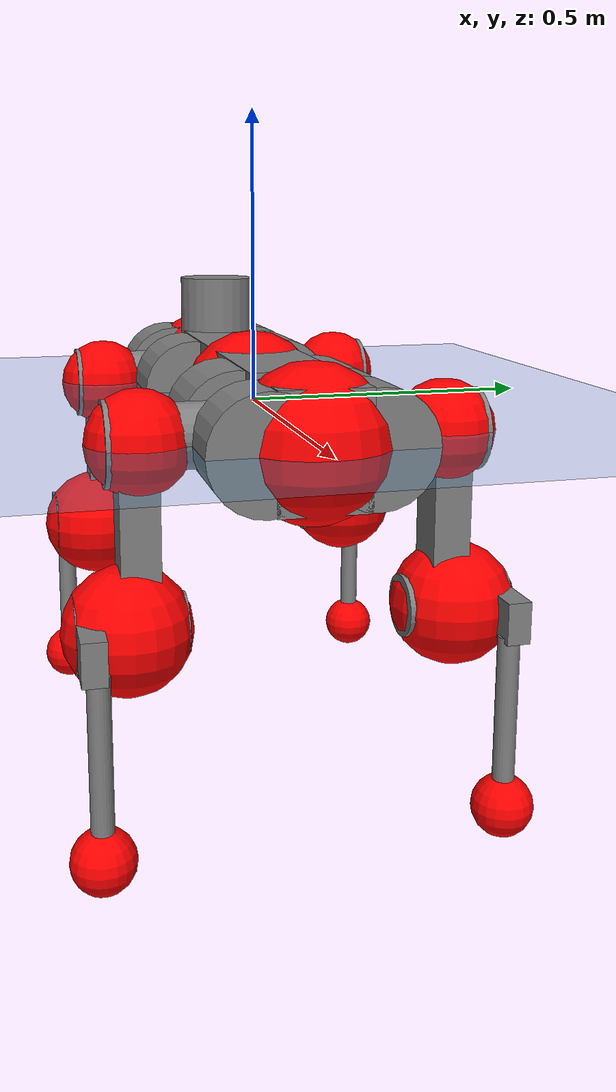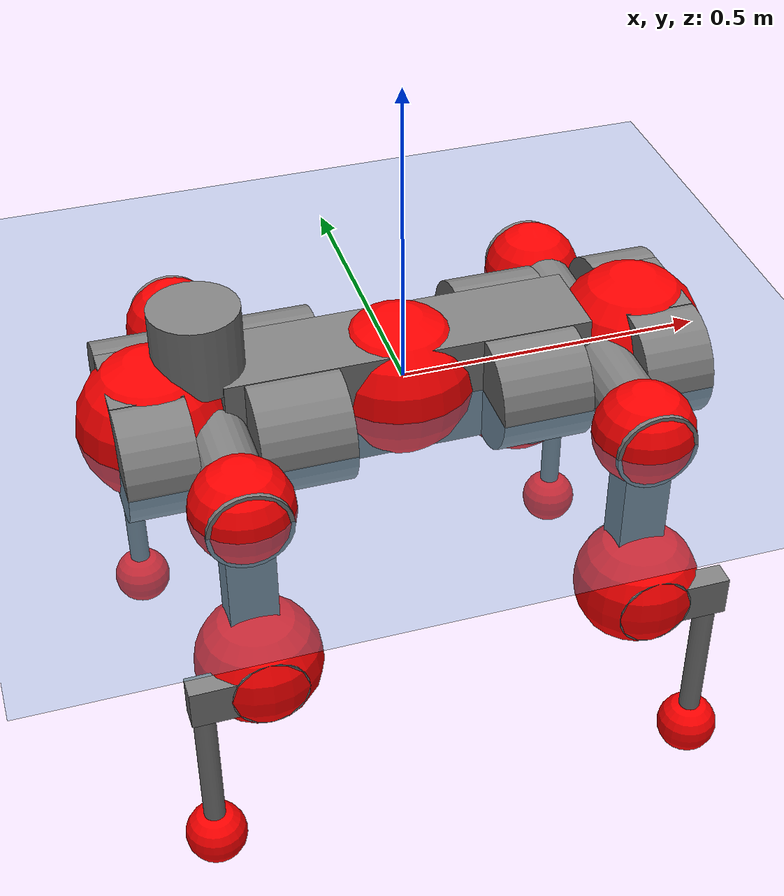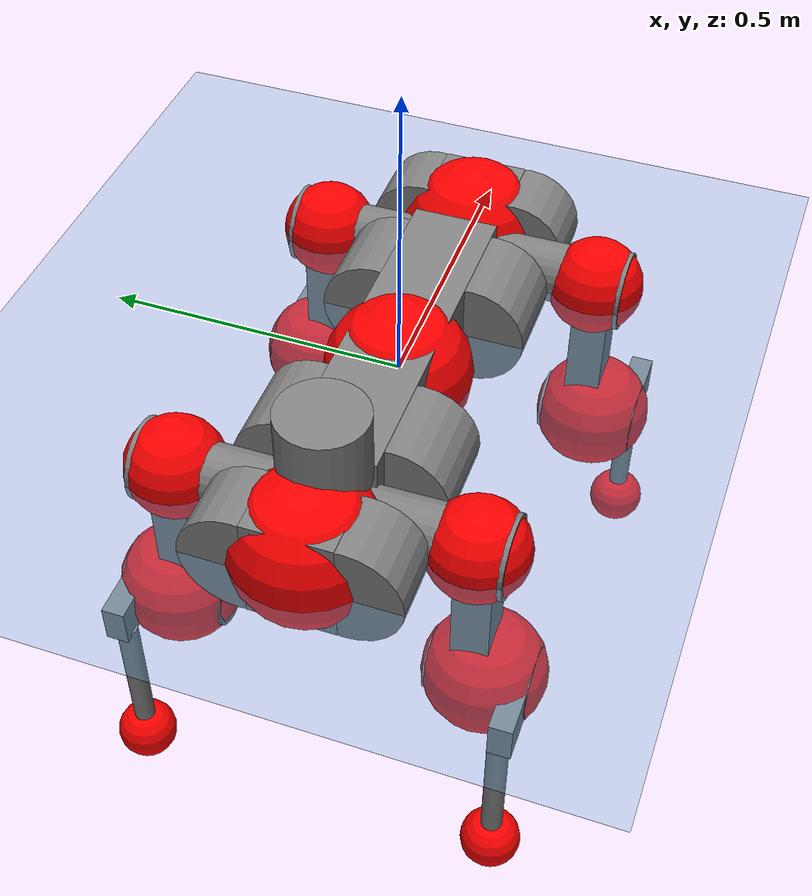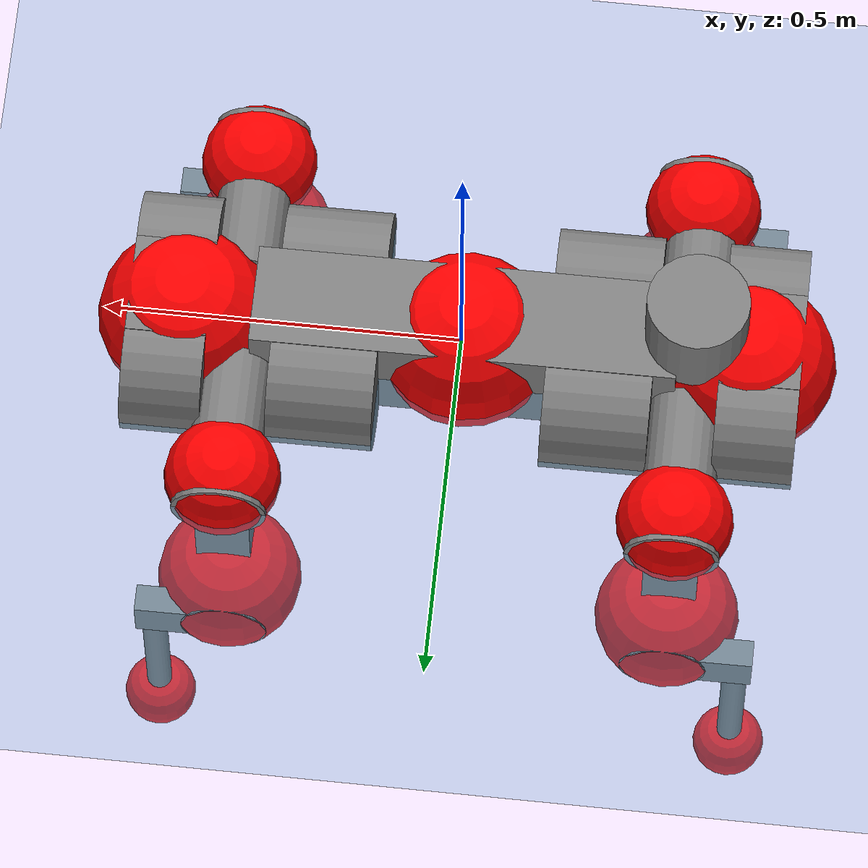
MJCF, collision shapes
<mujoco model="anymal_c">
  <compiler angle="radian" assetdir="assets" balanceinertia="true" inertiafromgeom="false"/>

  <option timestep="0.005" density="1.2" viscosity="2e-05"/>

  <size nkey="1"/>

  <visual>
    <quality shadowsize="8192"/>
    <map shadowclip="0.5"/>
  </visual>

  <default>
    <default class="/">
      <material specular="0" shininess="0.25"/>
      <geom contype="0" conaffinity="0" group="1" solref="-1000 -80"/>
      <site size="0.01 0.005 0.005" group="5"/>
      <general forcelimited="true" forcerange="-80 80" biastype="affine" gainprm="80" biasprm="0 -80 -2"/>
      <default class="anymal_c">
        <joint armature="0.01" damping="0.01" frictionloss="0.1"/>
        <default class="visual">
          <geom type="mesh" group="2"/>
          <default class="visual_zflip"/>
        </default>
        <default class="collision">
          <geom type="cylinder" group="3"/>
          <default class="foot">
            <geom size="0.03 0 0" type="sphere" condim="6" priority="1" friction="0.8 0.02 0.01" solimp="0.015 1 0.03"/>
          </default>
        </default>
      </default>
      <default class="reward_collision_sphere">
        <geom group="5" rgba="1 0 0 1"/>
      </default>
    </default>
  </default>

  <asset>
    <texture type="skybox" colorspace="auto" name="//unnamed_texture_0" builtin="gradient" rgb1="0.95 0.95 0.95" rgb2="0.95 0.95 0.95" width="100" height="600"/>
    <texture type="2d" colorspace="auto" name="texplane" builtin="checker" rgb1="0.345 0.575 0.748" rgb2="0.345 0.575 0.748" markrgb="1 1 1" width="512" height="512"/>
    <texture type="2d" colorspace="linear" name="base" file="base.png"/>
    <texture type="2d" colorspace="linear" name="top_shell" file="top_shell.png"/>
    <texture type="2d" colorspace="linear" name="bottom_shell" file="bottom_shell.png"/>
    <texture type="2d" colorspace="linear" name="remote" file="remote.png"/>
    <texture type="2d" colorspace="linear" name="hatch" file="hatch.png"/>
    <texture type="2d" colorspace="linear" name="handle" file="handle.png"/>
    <texture type="2d" colorspace="linear" name="face" file="face.png"/>
    <texture type="2d" colorspace="linear" name="battery" file="battery.png"/>
    <texture type="2d" colorspace="linear" name="lidar_cage" file="lidar_cage.png"/>
    <texture type="2d" colorspace="linear" name="depth_camera" file="depth_camera.png"/>
    <texture type="2d" colorspace="linear" name="wide_angle_camera" file="wide_angle_camera.png"/>
    <texture type="2d" colorspace="linear" name="lidar" file="lidar.png"/>
    <texture type="2d" colorspace="linear" name="drive" file="drive.png"/>
    <texture type="2d" colorspace="linear" name="hip_l" file="hip_l.png"/>
    <texture type="2d" colorspace="linear" name="shank_l" file="shank_l.png"/>
    <texture type="2d" colorspace="linear" name="foot" file="foot.png"/>
    <texture type="2d" colorspace="linear" name="thigh" file="thigh.png"/>
    <texture type="2d" colorspace="linear" name="shank_r" file="shank_r.png"/>
    <texture type="2d" colorspace="linear" name="hip_r" file="hip_r.png"/>
    <material name="MatPlane" class="/" texture="texplane" texuniform="true" texrepeat="2 2" specular="0.9" shininess="0.5"/>
    <material name="black_plastic" class="/" rgba="0.007 0.007 0.007 1"/>
    <material name="green" class="/" rgba="0.052 0.178 0.033 1"/>
    <material name="red" class="/" rgba="0.178 0.006 0.005 1"/>
    <material name="yellow" class="/" rgba="0.178 0.119 0.006 1"/>
    <material name="lwl" class="/" rgba="0.8 0.8 0.8 1"/>
    <material name="base" class="/" texture="base"/>
    <material name="top_shell" class="/" texture="top_shell"/>
    <material name="bottom_shell" class="/" texture="bottom_shell"/>
    <material name="hip_l" class="/" texture="hip_l"/>
    <material name="thigh" class="/" texture="thigh"/>
    <material name="shank_l" class="/" texture="shank_l"/>
    <material name="foot" class="/" texture="foot"/>
    <material name="hip_r" class="/" texture="hip_r"/>
    <material name="shank" class="/" texture="shank_r"/>
    <material name="hatch" class="/" texture="hatch"/>
    <material name="remote" class="/" texture="remote"/>
    <material name="handle" class="/" texture="handle"/>
    <material name="face" class="/" texture="face"/>
    <material name="depth_camera" class="/" texture="depth_camera"/>
    <material name="wide_angle_camera" class="/" texture="wide_angle_camera"/>
    <material name="battery" class="/" texture="battery"/>
    <material name="lidar_cage" class="/" texture="lidar_cage"/>
    <material name="lidar" class="/" texture="lidar"/>
    <material name="drive" class="/" texture="drive"/>
    <mesh name="base_0" class="/" file="base_0.obj"/>
    <mesh name="base_1" class="/" file="base_1.obj"/>
    <mesh name="base_2" class="/" file="base_2.obj"/>
    <mesh name="base_3" class="/" file="base_3.obj"/>
    <mesh name="base_4" class="/" file="base_4.obj"/>
    <mesh name="base_5" class="/" file="base_5.obj"/>
    <mesh name="top_shell" class="/" file="top_shell.obj"/>
    <mesh name="bottom_shell" class="/" file="bottom_shell.obj"/>
    <mesh name="remote" class="/" file="remote.obj"/>
    <mesh name="handle" class="/" file="handle.obj"/>
    <mesh name="face" class="/" file="face.obj"/>
    <mesh name="wide_angle_camera" class="/" file="wide_angle_camera.obj"/>
    <mesh name="depth_camera" class="/" file="depth_camera.obj"/>
    <mesh name="battery" class="/" file="battery.obj"/>
    <mesh name="lidar_cage" class="/" file="lidar_cage.obj"/>
    <mesh name="lidar" class="/" file="lidar.obj"/>
    <mesh name="drive" class="/" file="drive.obj"/>
    <mesh name="hip_l" class="/" file="hip_l.obj"/>
    <mesh name="thigh" class="/" file="thigh.obj"/>
    <mesh name="shank_l" class="/" file="shank_l.obj"/>
    <mesh name="foot" class="/" file="foot.obj"/>
    <mesh name="hip_r" class="/" file="hip_r.obj"/>
    <mesh name="hatch" class="/" file="hatch.obj"/>
    <mesh name="shank_r" class="/" file="shank_r.obj"/>
  </asset>

  <worldbody>
    <geom name="floor" class="/" size="100 100 0.125" type="plane" group="0" material="MatPlane"/>
    <light name="toplight_shadow" class="/" pos="0 0 5" dir="0.0990148 0.0990148 -0.990148" type="directional" ambient="0.04 0.04 0.04" diffuse="0.55 0.55 0.55" specular="0.12 0.12 0.12"/>
    <light name="toplight_fill" class="/" pos="0 0 5" dir="0.0990148 0.0990148 -0.990148" type="directional" castshadow="false" ambient="0.04 0.04 0.04" diffuse="0.3 0.3 0.3" specular="0.08 0.08 0.08"/>
    <body name="trunk" childclass="anymal_c" pos="-0.00701481 -0.00183331 9.15749e-05" quat="0.999996 -0.00226188 0.00102321 0.00132999">
      <inertial pos="0.00849205 -2.49953e-05 0.04702" quat="0.490978 0.506432 0.503575 0.498878" mass="22.2549" diaginertia="0.327681 1.39035 0.230507"/>
      <joint name="//unnamed_joint_0" type="free" armature="0" damping="0" frictionloss="0"/>
      <geom name="//unnamed_geom_1" class="visual" material="green" mesh="base_0"/>
      <geom name="//unnamed_geom_2" class="visual" material="yellow" mesh="base_1"/>
      <geom name="//unnamed_geom_3" class="visual" material="red" mesh="base_2"/>
      <geom name="//unnamed_geom_4" class="visual" material="black_plastic" mesh="base_3"/>
      <geom name="//unnamed_geom_5" class="visual" material="lwl" mesh="base_4"/>
      <geom name="//unnamed_geom_6" class="visual" material="base" mesh="base_5"/>
      <geom name="trunk_1" class="collision" size="0.29544 0.0713131 0.0916883" type="box"/>
      <geom name="trunk_2" class="collision" size="0.0916883 0.07386" pos="0.190174 0.0821405 0" quat="0.707107 0 0.707107 0"/>
      <geom name="trunk_3" class="collision" size="0.0916883 0.07386" pos="-0.190174 0.0821405 0" quat="0.707107 0 0.707107 0"/>
      <geom name="trunk_4" class="collision" size="0.0916883 0.07386" pos="0.190174 -0.0821405 0" quat="0.707107 0 0.707107 0"/>
      <geom name="trunk_5" class="collision" size="0.0916883 0.07386" pos="-0.190174 -0.0821405 0" quat="0.707107 0 0.707107 0"/>
      <geom name="//unnamed_geom_12" class="visual" material="top_shell" mesh="top_shell"/>
      <geom name="//unnamed_geom_13" class="visual" material="bottom_shell" mesh="bottom_shell"/>
      <geom name="//unnamed_geom_14" class="visual" material="remote" mesh="remote"/>
      <geom name="//unnamed_geom_15" class="visual" material="handle" mesh="handle"/>
      <geom name="//unnamed_geom_16" class="visual" pos="0.362423 0 0" quat="1 0 0 0" material="face" mesh="face"/>
      <geom name="trunk_6" class="collision" size="0.0560318 0.0713131 0.0916883" pos="0.410513 0 0" type="box"/>
      <geom name="//unnamed_geom_18" class="collision" size="0.0916883 0.0560318" pos="0.410513 0.0821405 0" quat="0.707107 0 0.707107 0"/>
      <geom name="//unnamed_geom_19" class="collision" size="0.0916883 0.0560318" pos="0.410513 -0.0821405 0" quat="0.707107 0 0.707107 0"/>
      <geom name="//unnamed_geom_20" class="visual" pos="0.403655 0 -0.0304669" quat="0.965926 0 0.258819 0" material="depth_camera" mesh="depth_camera"/>
      <geom name="//unnamed_geom_21" class="visual" pos="0.448548 0 0.015097" material="wide_angle_camera" mesh="wide_angle_camera"/>
      <geom name="//unnamed_geom_22" class="visual_zflip" pos="-0.362423 0 0" quat="0 0 0 1" material="face" mesh="face"/>
      <geom name="trunk_7" class="collision" size="0.0560318 0.0713131 0.0916883" pos="-0.410513 0 0" quat="0 0 0 1" type="box"/>
      <geom name="//unnamed_geom_24" class="collision" size="0.0916883 0.0560318" pos="-0.410513 -0.0821405 0" quat="0 -0.707107 0 0.707107"/>
      <geom name="//unnamed_geom_25" class="collision" size="0.0916883 0.0560318" pos="-0.410513 0.0821405 0" quat="0 -0.707107 0 0.707107"/>
      <geom name="//unnamed_geom_26" class="visual" pos="-0.403655 0 -0.0304669" quat="0 -0.258819 0 0.965926" material="depth_camera" mesh="depth_camera"/>
      <geom name="//unnamed_geom_27" class="visual_zflip" pos="-0.448548 0 0.015097" quat="0 0 0 1" material="wide_angle_camera" mesh="wide_angle_camera"/>
      <geom name="//unnamed_geom_28" class="visual" material="battery" mesh="battery"/>
      <geom name="//unnamed_geom_29" class="visual" pos="0 0.0936509 0.0282771" quat="0.683013 -0.183013 0.183013 0.683013" material="depth_camera" mesh="depth_camera"/>
      <geom name="//unnamed_geom_30" class="visual" pos="0 -0.0936509 0.0282771" quat="0.683013 0.183013 0.183013 -0.683013" material="depth_camera" mesh="depth_camera"/>
      <geom name="//unnamed_geom_31" class="visual" pos="-0.318268 0 0.0741233" quat="1 0 0 0" material="lidar_cage" mesh="lidar_cage"/>
      <geom name="trunk_8" class="collision" size="0.0713131 0.0611255" pos="-0.318268 0 0.134632"/>
      <geom name="//unnamed_geom_33" class="visual" pos="-0.318268 0.000117498 0.143406" quat="0.707107 0 0 -0.707107" material="lidar" mesh="lidar"/>
      <geom name="//unnamed_geom_34" class="visual" pos="0.262221 0.121979 2.84549e-09" quat="0.258819 0.965926 0 0" material="drive" mesh="drive"/>
      <geom name="//unnamed_geom_35" class="visual" pos="0.262221 -0.121979 -2.84549e-09" quat="0.258819 -0.965926 0 0" material="drive" mesh="drive"/>
      <geom name="//unnamed_geom_36" class="visual" pos="-0.262221 0.121979 -2.84549e-09" quat="0 0 0.965926 -0.258819" material="drive" mesh="drive"/>
      <geom name="//unnamed_geom_37" class="visual" pos="-0.262221 -0.121979 2.84549e-09" quat="0 0 -0.965926 -0.258819" material="drive" mesh="drive"/>
      <geom name="//unnamed_geom_38" class="visual" pos="0.101426 0 0.0736191" quat="1 0 0 0" material="hatch" mesh="hatch"/>
      <geom name="//unnamed_geom_39" class="reward_collision_sphere" size="0.122251"/>
      <geom name="//unnamed_geom_40" class="reward_collision_sphere" size="0.122251" pos="0.393463 0 0"/>
      <geom name="//unnamed_geom_41" class="reward_collision_sphere" size="0.122251" pos="-0.393463 0 0"/>
      <site name="imu" pos="0.207577 0.00560568 0.020607" size="0.0101876"/>
      <camera name="track" pos="0 -2.34687 0" quat="0.707107 0.707107 0 0" mode="trackcom"/>
      <camera name="ego_camera" pos="0.393463 0 -0.0403392" quat="-0.5 -0.5 0.5 0.5"/>
      <body name="LF_HIP" pos="0.262859 0.120775 0.000173094" quat="0.258808 0.965929 3.49894e-05 -2.25833e-06">
        <inertial pos="0.0518735 -0.0150223 -0.0106505" quat="-0.133125 0.715469 -0.137207 0.671979" mass="3.02243" diaginertia="0.00280061 0.0111589 0.00342584"/>
        <joint name="LF_HAA" pos="0 0 0" axis="0.999434 -0.0168877 0.0291013" range="-0.850515 0.440624" armature="0.0105098" damping="0.00777211" frictionloss="0.0979035"/>
        <geom name="//unnamed_geom_42" class="visual" pos="0 0.000167387 -2.74932e-05" quat="0.258819 -0.965926 0 0" material="hip_l" mesh="hip_l"/>
        <geom name="//unnamed_geom_43" class="visual" pos="0.0523743 -0.0673417 -0.0376596" quat="0.183013 -0.683013 0.683013 0.183013" material="drive" mesh="drive"/>
        <geom name="//unnamed_geom_44" class="collision" size="0.050938 0.0713131" pos="0.0523743 -0.0140341 -0.00696356" quat="-0.353553 -0.612372 0.612372 -0.353553"/>
        <body name="LF_THIGH" pos="0.0521349 -0.0853957 -0.0431369" quat="0.183436 -0.68309 0.68228 0.185024">
          <inertial pos="0.0243318 0.00190164 -0.24233" quat="0.993098 -0.00533234 -0.0815301 0.0841459" mass="3.28805" diaginertia="0.0159475 0.0704767 0.00410058"/>
          <joint name="LF_HFE" pos="0 0 0" axis="0.999984 0.002924 -0.00485634" stiffness="0.0356686" range="-3.14035 3.15499" armature="0.00997587" damping="0.0075923" frictionloss="0.0960968"/>
          <geom name="//unnamed_geom_45" class="visual" pos="-0.00595039 -9.37642e-06 0" quat="0.707107 0 0 -0.707107" material="thigh" mesh="thigh"/>
          <geom name="//unnamed_geom_46" class="collision" size="0.0662193 0.0407504" pos="0.0349745 0 0" quat="0.5 0.5 -0.5 -0.5"/>
          <geom name="//unnamed_geom_47" class="collision" size="0.0382035 0.0305628 0.143965" pos="0.0262308 0 -0.142512" quat="0.707107 0 0 -0.707107" type="box"/>
          <geom name="//unnamed_geom_48" class="visual" pos="0.0876985 0 -0.287417" quat="1 0 0 0" material="drive" mesh="drive"/>
          <geom name="//unnamed_geom_49" class="collision" size="0.050938 0.0713131" pos="0.0264932 0 -0.287417" quat="0.707107 0 0.707107 0"/>
          <geom name="//unnamed_geom_50" class="reward_collision_sphere" size="0.0815007" pos="0.021859 0 0"/>
          <body name="LF_SHANK" pos="0.0906572 0.0055073 -0.289914" quat="1 0.000157745 -0.000716005 0.000348712">
            <inertial pos="0.00871887 -0.0713116 -0.0835038" quat="0.9932 -0.113636 -0.00392964 -0.0250099" mass="0.615328" diaginertia="0.00479332 0.018233 0.00108104"/>
            <joint name="LF_KFE" pos="0 0 0" axis="0.99998 -0.00446868 -0.00457515" range="-3.03066 3.17126" armature="0.00997031" damping="0.0259555" frictionloss="0.0987163"/>
            <geom name="//unnamed_geom_51" class="visual" pos="-0.00194029 -0.0103457 0" quat="0.707107 0 0 -0.707107" material="shank_l" mesh="shank_l"/>
            <geom name="LF_kfe_act" class="collision" size="0.0611255 0.0203752" pos="0.0174872 0 0" quat="0.5 0.5 -0.5 -0.5"/>
            <geom name="//unnamed_geom_53" class="collision" size="0.0585776 0.0343831 0.0193564" pos="0.0174872 -0.0674714 0" quat="0.5 0.5 -0.5 -0.5" type="box"/>
            <geom name="//unnamed_geom_54" class="visual" pos="0.0114109 -0.106538 -0.340836" quat="0.382683 0 0 -0.92388" material="foot" mesh="foot"/>
            <geom name="LF_calf" class="collision" size="0.0178283 0.143902" pos="0.0114104 -0.103204 -0.170418" quat="0.707107 0 0 -0.707107"/>
            <geom name="LF_foot" class="foot" size="0.0202675" pos="0.0114104 -0.103204 -0.318145" quat="0.707107 0 0 -0.707107"/>
            <geom name="//unnamed_geom_57" class="reward_collision_sphere" size="0.101876" pos="-0.0437181 0 0"/>
            <geom name="//unnamed_geom_58" class="reward_collision_sphere" size="0.050938" pos="0.0114104 -0.103204 -0.318145"/>
            <site name="LF_foot" class="foot" pos="0.0114104 -0.103204 -0.318145" quat="0.707107 0 0 -0.707107" size="0.0101876"/>
          </body>
        </body>
      </body>
      <body name="RF_HIP" pos="0.265288 -0.121856 0.00569543" quat="0.258214 -0.966086 0.00156596 4.3014e-05">
        <inertial pos="0.0490983 0.0228359 -0.00760877" quat="0.134662 0.689321 0.111467 0.703049" mass="2.98359" diaginertia="0.00314876 0.0111195 0.00355826"/>
        <joint name="RF_HAA" pos="0 0 0" axis="0.999992 -0.00160454 -0.00361162" range="-0.467224 0.715676" armature="0.0109617" damping="0.0217873" frictionloss="0.123927"/>
        <geom name="//unnamed_geom_59" class="visual" pos="0 -0.000167386 -2.74932e-05" quat="0.258819 0.965926 0 0" material="hip_r" mesh="hip_r"/>
        <geom name="//unnamed_geom_60" class="visual" pos="0.0523743 0.0673417 -0.0376596" quat="0.183013 0.683013 0.683013 -0.183013" material="drive" mesh="drive"/>
        <geom name="//unnamed_geom_61" class="collision" size="0.050938 0.0713131" pos="0.0523743 0.0140341 -0.00696356" quat="-0.353553 0.612372 0.612372 0.353553"/>
        <body name="RF_THIGH" pos="0.0519896 0.0921379 -0.042696" quat="0.182671 0.683132 0.683194 -0.182231">
          <inertial pos="0.0260316 0.00325501 -0.249665" quat="0.992779 0.00462667 -0.0798822 0.0893704" mass="3.1893" diaginertia="0.0150996 0.0655606 0.00415217"/>
          <joint name="RF_HFE" pos="0 0 0" axis="0.999989 -0.00469667 -0.000687025" stiffness="0.00742944" range="-3.19208 3.06503" armature="0.0102485" damping="0.0021016" frictionloss="0.103018"/>
          <geom name="//unnamed_geom_62" class="visual" pos="-0.00595039 -9.37642e-06 0" quat="0.707107 0 0 -0.707107" material="thigh" mesh="thigh"/>
          <geom name="//unnamed_geom_63" class="collision" size="0.0662193 0.0407504" pos="0.0349745 0 0" quat="0.5 0.5 0.5 0.5"/>
          <geom name="//unnamed_geom_64" class="collision" size="0.0382035 0.0305628 0.143965" pos="0.0262308 0 -0.142512" quat="0.707107 0 0 0.707107" type="box"/>
          <geom name="//unnamed_geom_65" class="visual" pos="0.0876985 0 -0.287417" quat="1 0 0 0" material="drive" mesh="drive"/>
          <geom name="//unnamed_geom_66" class="collision" size="0.050938 0.0713131" pos="0.0264932 0 -0.287417" quat="0.707107 0 0.707107 0"/>
          <geom name="//unnamed_geom_67" class="reward_collision_sphere" size="0.0815007" pos="0.021859 0 0"/>
          <body name="RF_SHANK" pos="0.08849 0.00372957 -0.288963" quat="1 -1.95119e-05 -7.54272e-05 -5.786e-05">
            <inertial pos="0.00554207 0.0735944 -0.0808452" quat="0.991044 0.125876 0.0149898 0.0419841" mass="0.612319" diaginertia="0.00522784 0.0206477 0.00120906"/>
            <joint name="RF_KFE" pos="0 0 0" axis="0.999542 -0.01826 0.0241523" stiffness="0.0209804" range="-3.08198 3.08839" armature="0.00948436" damping="0" frictionloss="0.098675"/>
            <geom name="//unnamed_geom_68" class="visual" pos="-0.00194028 0.0103457 0" quat="0.707107 0 0 0.707107" material="shank" mesh="shank_r"/>
            <geom name="RF_kfe_act" class="collision" size="0.0611255 0.0203752" pos="0.0174872 0 0" quat="0.5 0.5 0.5 0.5"/>
            <geom name="//unnamed_geom_70" class="collision" size="0.0585776 0.0343831 0.0193564" pos="0.0174872 0.0674714 0" quat="0.5 0.5 0.5 0.5" type="box"/>
            <geom name="//unnamed_geom_71" class="visual" pos="0.0114099 0.106538 -0.340836" quat="0.382683 0 0 0.92388" material="foot" mesh="foot"/>
            <geom name="RF_calf" class="collision" size="0.0178283 0.143902" pos="0.0114104 0.103204 -0.170418" quat="0.707107 0 0 0.707107"/>
            <geom name="RF_foot" class="foot" size="0.0278273" pos="0.0114104 0.103204 -0.318145" quat="0.707107 0 0 0.707107"/>
            <geom name="//unnamed_geom_74" class="reward_collision_sphere" size="0.101876" pos="-0.0437181 0 0"/>
            <geom name="//unnamed_geom_75" class="reward_collision_sphere" size="0.050938" pos="0.0114104 0.103204 -0.318145"/>
            <site name="RF_foot" class="foot" pos="0.0114104 0.103204 -0.318145" quat="0.707107 0 0 0.707107" size="0.0101876"/>
          </body>
        </body>
      </body>
      <body name="LH_HIP" pos="-0.260944 0.122252 0.00287188" quat="-8.3324e-05 0.000138543 0.96592 -0.25884">
        <inertial pos="0.0505209 0.0117973 -0.00544622" quat="0.123292 0.680404 0.0937539 0.716282" mass="2.79854" diaginertia="0.00315556 0.0111388 0.0032923"/>
        <joint name="LH_HAA" pos="0 0 0" axis="0.999999 0.000976813 0.000727794" range="-0.542223 0.747501" armature="0.0120145" damping="0" frictionloss="0.0764247"/>
        <geom name="//unnamed_geom_76" class="visual" pos="0 -0.000167386 -2.74932e-05" quat="-0.258819 -0.965926 0 0" material="hip_r" mesh="hip_r"/>
        <geom name="//unnamed_geom_77" class="visual" pos="0.0523743 0.0673417 -0.0376596" quat="0.183013 0.683013 0.683013 -0.183013" material="drive" mesh="drive"/>
        <geom name="//unnamed_geom_78" class="collision" size="0.050938 0.0713131" pos="0.0523743 0.0140341 -0.00696356" quat="-0.353553 0.612372 0.612372 0.353553"/>
        <body name="LH_THIGH" pos="0.0511879 0.0899427 -0.0471447" quat="0.184069 0.683322 0.682673 -0.182064">
          <inertial pos="0.0269438 0.000537042 -0.245313" quat="0.99292 -0.0100822 -0.0806382 0.0866371" mass="3.0624" diaginertia="0.0160678 0.0699893 0.0043515"/>
          <joint name="LH_HFE" pos="0 0 0" axis="0.99997 0.00605329 0.00481593" range="-3.11196 3.1769" armature="0.00868441" damping="0.0105" frictionloss="0.103652"/>
          <geom name="//unnamed_geom_79" class="visual" pos="-0.00595039 -9.37642e-06 0" quat="0.707107 0 0 -0.707107" material="thigh" mesh="thigh"/>
          <geom name="//unnamed_geom_80" class="collision" size="0.0662193 0.0407504" pos="0.0349745 0 0" quat="0.5 0.5 -0.5 -0.5"/>
          <geom name="//unnamed_geom_81" class="collision" size="0.0382035 0.0305628 0.143965" pos="0.0262308 0 -0.142512" quat="0.707107 0 0 -0.707107" type="box"/>
          <geom name="//unnamed_geom_82" class="visual" pos="0.0876985 0 -0.287417" quat="1 0 0 0" material="drive" mesh="drive"/>
          <geom name="//unnamed_geom_83" class="collision" size="0.050938 0.0713131" pos="0.0264932 0 -0.287417" quat="0.707107 0 0.707107 0"/>
          <geom name="//unnamed_geom_84" class="reward_collision_sphere" size="0.0815007" pos="0.021859 0 0"/>
          <body name="LH_SHANK" pos="0.0878301 -0.000860812 -0.28189" quat="1 -0.000189306 -0.000238927 0.000821224">
            <inertial pos="0.00364282 0.0652602 -0.0796084" quat="0.993282 0.112727 -0.00121532 0.026098" mass="0.632684" diaginertia="0.00533241 0.0212985 0.00128616"/>
            <joint name="LH_KFE" pos="0 0 0" axis="0.999945 -0.00827064 0.00638029" stiffness="0.0341027" range="-3.13054 3.14307" armature="0.00972494" damping="0.0163462" frictionloss="0.0696856"/>
            <geom name="//unnamed_geom_85" class="visual" pos="-0.00194028 0.0103457 0" quat="-0.707107 0 0 -0.707107" material="shank" mesh="shank_r"/>
            <geom name="LH_kfe_act" class="collision" size="0.0611255 0.0203752" pos="0.0174872 0 0" quat="0.5 0.5 -0.5 -0.5"/>
            <geom name="//unnamed_geom_87" class="collision" size="0.0585776 0.0343831 0.0193564" pos="0.0174872 0.0674714 0" quat="0.5 0.5 -0.5 -0.5" type="box"/>
            <geom name="//unnamed_geom_88" class="visual" pos="0.0114099 0.106538 -0.340836" quat="-0.382683 0 0 -0.92388" material="foot" mesh="foot"/>
            <geom name="LH_calf" class="collision" size="0.0178283 0.143902" pos="0.0114104 0.103204 -0.170418" quat="0.707107 0 0 -0.707107"/>
            <geom name="LH_foot" class="foot" size="0.0318967" pos="0.0114104 0.103204 -0.318145" quat="0.707107 0 0 -0.707107"/>
            <geom name="//unnamed_geom_91" class="reward_collision_sphere" size="0.101876" pos="-0.0437181 0 0"/>
            <geom name="//unnamed_geom_92" class="reward_collision_sphere" size="0.050938" pos="0.0114104 0.103204 -0.318145"/>
            <site name="LH_foot" class="foot" pos="0.0114104 0.103204 -0.318145" quat="0.707107 0 0 -0.707107" size="0.0101876"/>
          </body>
        </body>
      </body>
      <body name="RH_HIP" pos="-0.26108 -0.121052 0.00179253" quat="0.000686814 0.00231364 -0.966398 -0.257037">
        <inertial pos="0.0431386 -0.0209327 -0.00209307" quat="-0.125126 0.718033 -0.136994 0.670824" mass="2.91377" diaginertia="0.00294939 0.0106951 0.00331257"/>
        <joint name="RH_HAA" pos="0 0 0" axis="0.999433 0.0185279 0.0281144" range="-0.700008 0.541991" armature="0.010243" damping="0.00417062" frictionloss="0.11358"/>
        <geom name="//unnamed_geom_93" class="visual" pos="0 0.000167387 -2.74932e-05" quat="-0.258819 0.965926 0 0" material="hip_l" mesh="hip_l"/>
        <geom name="//unnamed_geom_94" class="visual" pos="0.0523743 -0.0673417 -0.0376596" quat="-0.183013 0.683013 -0.683013 -0.183013" material="drive" mesh="drive"/>
        <geom name="//unnamed_geom_95" class="collision" size="0.050938 0.0713131" pos="0.0523743 -0.0140341 -0.00696356" quat="0.353553 0.612372 -0.612372 0.353553"/>
        <body name="RH_THIGH" pos="0.0504672 -0.0818921 -0.035961" quat="-0.182897 0.68306 -0.68299 -0.183033">
          <inertial pos="0.0249965 -0.000722502 -0.248022" quat="0.993169 -0.00509869 -0.0806236 0.0842023" mass="3.43891" diaginertia="0.0150577 0.0650997 0.00434037"/>
          <joint name="RH_HFE" pos="0 0 0" axis="0.999942 0.0107333 0.000745182" range="-3.1478 3.05123" armature="0.00903558" damping="0.00894808" frictionloss="0.113515"/>
          <geom name="//unnamed_geom_96" class="visual" pos="-0.00595039 -9.37642e-06 0" quat="0.707107 0 0 -0.707107" material="thigh" mesh="thigh"/>
          <geom name="//unnamed_geom_97" class="collision" size="0.0662193 0.0407504" pos="0.0349745 0 0" quat="0.5 0.5 0.5 0.5"/>
          <geom name="//unnamed_geom_98" class="collision" size="0.0382035 0.0305628 0.143965" pos="0.0262308 0 -0.142512" quat="0.707107 0 0 0.707107" type="box"/>
          <geom name="//unnamed_geom_99" class="visual" pos="0.0876985 0 -0.287417" quat="1 0 0 0" material="drive" mesh="drive"/>
          <geom name="//unnamed_geom_100" class="collision" size="0.050938 0.0713131" pos="0.0264932 0 -0.287417" quat="0.707107 0 0.707107 0"/>
          <geom name="//unnamed_geom_101" class="reward_collision_sphere" size="0.0815007" pos="0.021859 0 0"/>
          <body name="RH_SHANK" pos="0.0870224 0.00341757 -0.287024" quat="1 7.13785e-05 0.000290406 0.000107966">
            <inertial pos="0.00760505 -0.0692224 -0.0822482" quat="0.993405 -0.111953 -0.00130242 -0.0247265" mass="0.613478" diaginertia="0.00530097 0.0209439 0.00112098"/>
            <joint name="RH_KFE" pos="0 0 0" axis="0.99969 -0.00420841 0.0245506" range="-3.15055 3.13671" armature="0.00933514" damping="0" frictionloss="0.0924636"/>
            <geom name="//unnamed_geom_102" class="visual" pos="-0.00194029 -0.0103457 0" quat="0.707107 0 0 -0.707107" material="shank_l" mesh="shank_l"/>
            <geom name="RH_kfe_act" class="collision" size="0.0611255 0.0203752" pos="0.0174872 0 0" quat="0.5 0.5 0.5 0.5"/>
            <geom name="//unnamed_geom_104" class="collision" size="0.0585776 0.0343831 0.0193564" pos="0.0174872 -0.0674714 0" quat="0.5 0.5 0.5 0.5" type="box"/>
            <geom name="//unnamed_geom_105" class="visual" pos="0.0114109 -0.106538 -0.340836" quat="0.382683 0 0 -0.92388" material="foot" mesh="foot"/>
            <geom name="RH_calf" class="collision" size="0.0178283 0.143902" pos="0.0114104 -0.103204 -0.170418" quat="0.707107 0 0 0.707107"/>
            <geom name="RH_foot" class="foot" size="0.0358404" pos="0.0114104 -0.103204 -0.318145" quat="0.707107 0 0 0.707107"/>
            <geom name="//unnamed_geom_108" class="reward_collision_sphere" size="0.101876" pos="-0.0437181 0 0"/>
            <geom name="//unnamed_geom_109" class="reward_collision_sphere" size="0.050938" pos="0.0114104 -0.103204 -0.318145"/>
            <site name="RH_foot" class="foot" pos="0.0114104 -0.103204 -0.318145" quat="0.707107 0 0 0.707107" size="0.0101876"/>
          </body>
        </body>
      </body>
    </body>
  </worldbody>

  <contact>
    <pair class="/" geom1="floor" geom2="LF_foot" name="//unnamed_contact_0"/>
    <pair class="/" geom1="floor" geom2="RF_foot" name="//unnamed_contact_1"/>
    <pair class="/" geom1="floor" geom2="LH_foot" name="//unnamed_contact_2"/>
    <pair class="/" geom1="floor" geom2="RH_foot" name="//unnamed_contact_3"/>
  </contact>

  <actuator>
    <general name="LF_HAA" class="/" joint="LF_HAA" forcerange="-80.9248 80.9248" gainprm="79.8718" biasprm="0 -79.8718 -2.24618"/>
    <general name="LF_HFE" class="/" joint="LF_HFE" forcerange="-83.5944 83.5944" gainprm="79.8718" biasprm="0 -79.8718 -2.24618"/>
    <general name="LF_KFE" class="/" joint="LF_KFE" forcerange="-75.9249 75.9249" gainprm="79.8718" biasprm="0 -79.8718 -2.24618"/>
    <general name="RF_HAA" class="/" joint="RF_HAA" forcerange="-81.3091 81.3091" gainprm="79.8718" biasprm="0 -79.8718 -2.24618"/>
    <general name="RF_HFE" class="/" joint="RF_HFE" forcerange="-80.3394 80.3394" gainprm="79.8718" biasprm="0 -79.8718 -2.24618"/>
    <general name="RF_KFE" class="/" joint="RF_KFE" forcerange="-83.7557 83.7557" gainprm="79.8718" biasprm="0 -79.8718 -2.24618"/>
    <general name="LH_HAA" class="/" joint="LH_HAA" forcerange="-63.0438 63.0438" gainprm="79.8718" biasprm="0 -79.8718 -2.24618"/>
    <general name="LH_HFE" class="/" joint="LH_HFE" forcerange="-82.8791 82.8791" gainprm="79.8718" biasprm="0 -79.8718 -2.24618"/>
    <general name="LH_KFE" class="/" joint="LH_KFE" forcerange="-99.9542 99.9542" gainprm="79.8718" biasprm="0 -79.8718 -2.24618"/>
    <general name="RH_HAA" class="/" joint="RH_HAA" forcerange="-88.229 88.229" gainprm="79.8718" biasprm="0 -79.8718 -2.24618"/>
    <general name="RH_HFE" class="/" joint="RH_HFE" forcerange="-64.3895 64.3895" gainprm="79.8718" biasprm="0 -79.8718 -2.24618"/>
    <general name="RH_KFE" class="/" joint="RH_KFE" forcerange="-89.0155 89.0155" gainprm="79.8718" biasprm="0 -79.8718 -2.24618"/>
  </actuator>

  <sensor>
    <gyro site="imu" name="imu_angular_velocity"/>
    <velocimeter site="imu" name="imu_linear_velocity"/>
    <framelinvel objtype="site" objname="LF_foot" name="LF_foot_global_linear_velocity"/>
    <framelinvel objtype="site" objname="RF_foot" name="RF_foot_global_linear_velocity"/>
    <framelinvel objtype="site" objname="LH_foot" name="LH_foot_global_linear_velocity"/>
    <framelinvel objtype="site" objname="RH_foot" name="RH_foot_global_linear_velocity"/>
  </sensor>

  <keyframe>
    <key name="home" qpos="0 0 0.55 1 0 0 0 0 0.4 -0.8 0 -0.4 0.8 0 -0.4 0.8 0 0.4 -0.8"/>
  </keyframe>
</mujoco>
